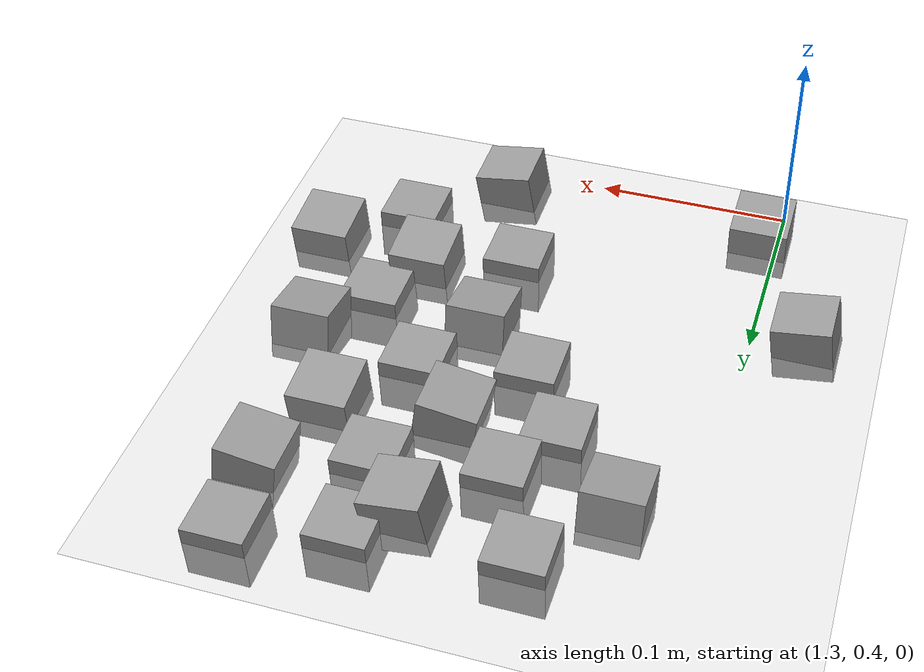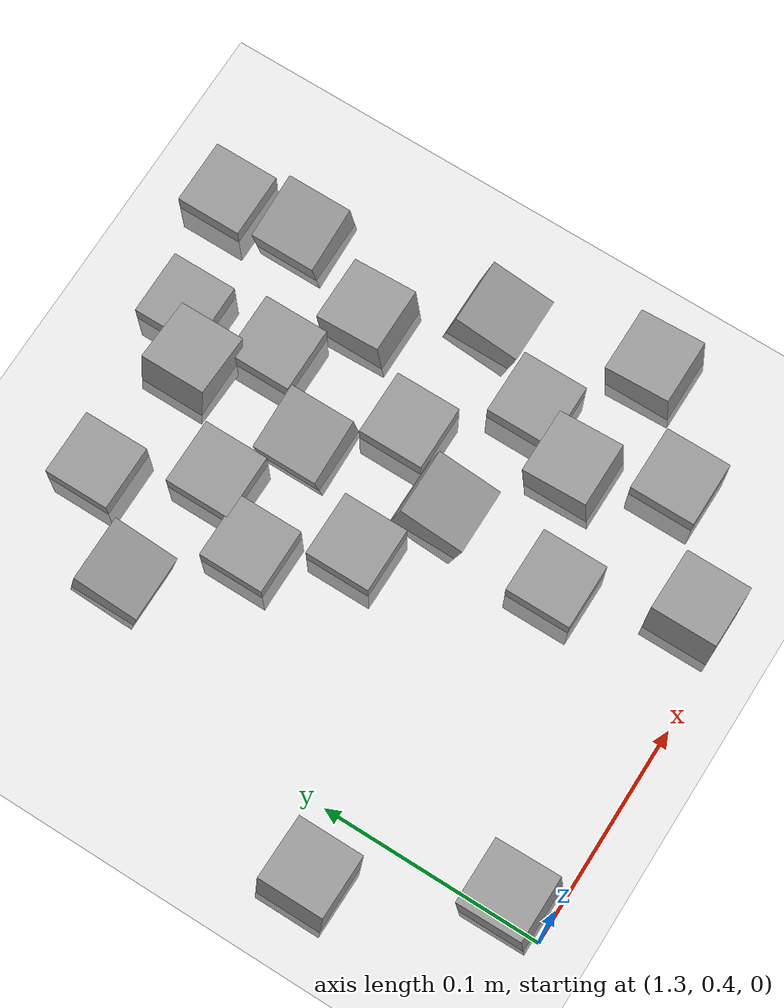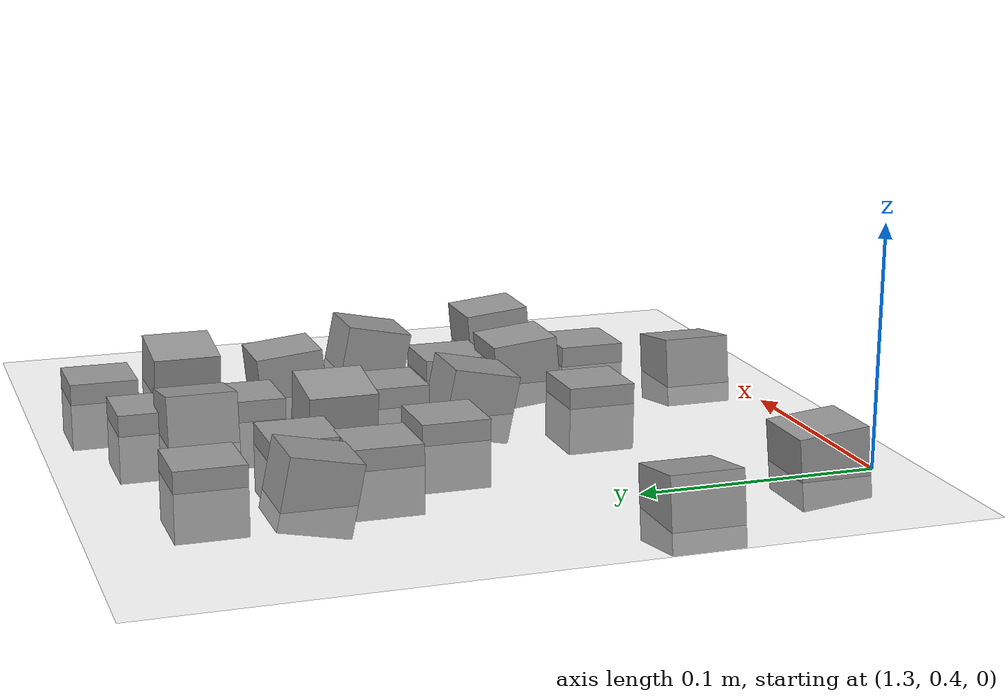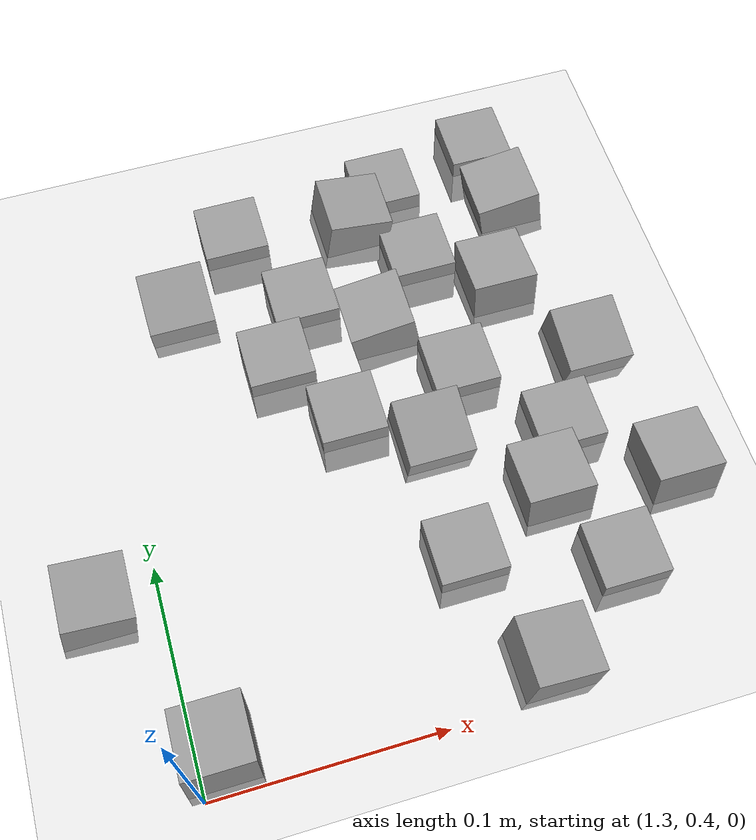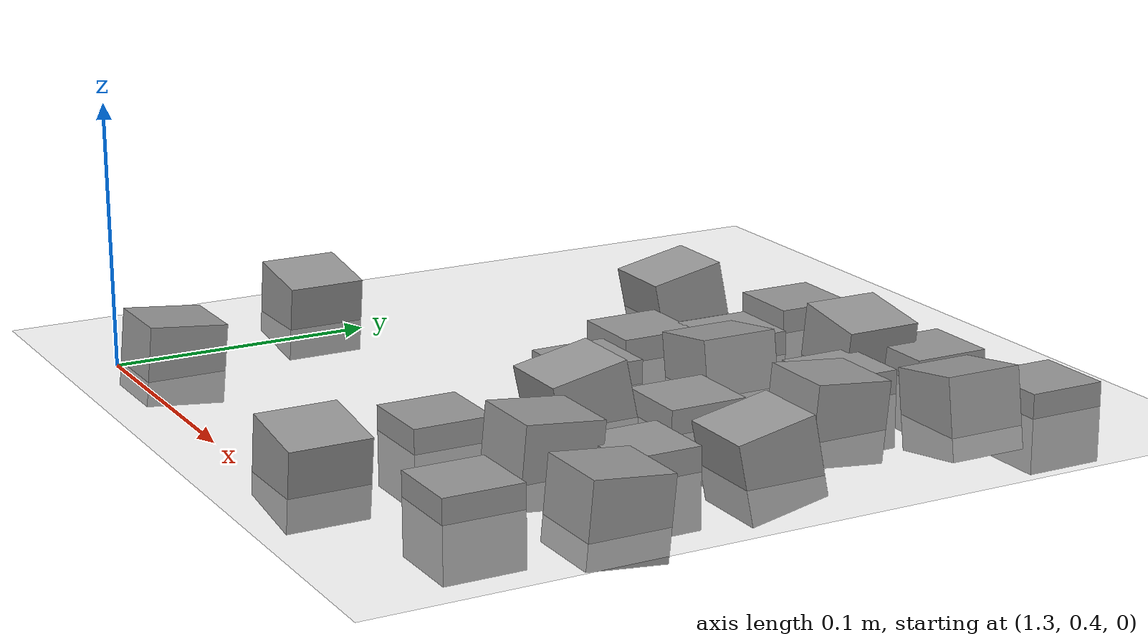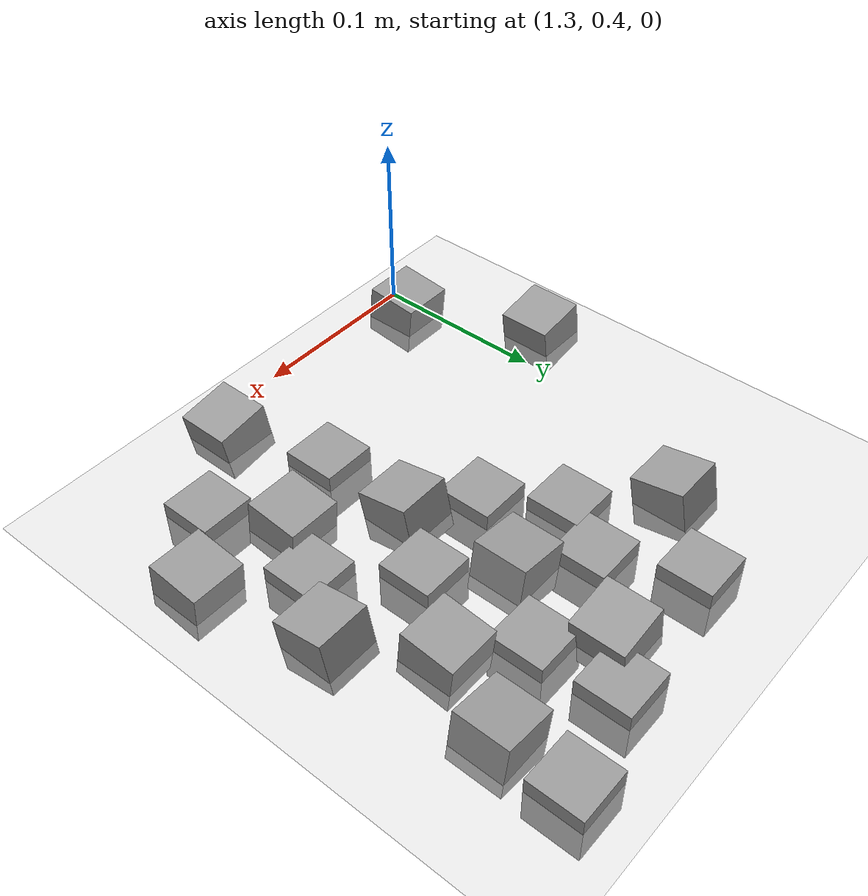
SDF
<sdf version="1.7">
 <world name="default">
  <model name="ground_plane">
   <static>1</static>
   <link name="link">
    <collision name="collision">
     <geometry><plane><normal>0 0 1</normal><size>100 100</size></plane></geometry>
     <surface><friction><ode><mu>100</mu><mu2>50</mu2></ode></friction></surface>
    </collision>
    <visual name="visual">
     <cast_shadows>0</cast_shadows>
     <geometry><plane><normal>0 0 1</normal><size>100 100</size></plane></geometry>
     <material>
      <script><uri>file://media/materials/scripts/gazebo.material</uri><name>Gazebo/Grey</name></script>
     </material>
    </visual>
   </link>
  </model>
  <model name="stone_road_0">
   <link name="link_0_clone_0">
    <inertial>
     <mass>1</mass>
     <inertia>
      <ixx>0.166667</ixx>
      <ixy>0</ixy>
      <ixz>0</ixz>
      <iyy>0.166667</iyy>
      <iyz>0</iyz>
      <izz>0.166667</izz>
     </inertia>
    </inertial>
    <pose>-0.104982 -0.15412 0.003778 0.2 -0 0</pose>
    <kinematic>1</kinematic>
    <visual name="visual">
     <geometry><box><size>0.03 0.03 0.03</size></box></geometry>
     <material>
      <lighting>1</lighting>
      <script><uri>file://media/materials/scripts/gazebo.material</uri><name>Gazebo/Grey</name></script>
      <shader type="pixel"><normal_map>__default__</normal_map></shader>
      <ambient>0.3 0.3 0.3 1</ambient>
      <diffuse>0.7 0.7 0.7 1</diffuse>
      <specular>0.01 0.01 0.01 1</specular>
      <emissive>0 0 0 1</emissive>
     </material>
    </visual>
    <collision name="collision">
     <geometry><box><size>0.03 0.03 0.03</size></box></geometry>
     <surface>
      <friction>
       <ode><mu>1</mu><mu2>1</mu2><fdir1>0 0 0</fdir1><slip1>0</slip1><slip2>0</slip2></ode>
       <torsional>
        <coefficient>1</coefficient>
        <patch_radius>0</patch_radius>
        <surface_radius>0</surface_radius>
        <use_patch_radius>1</use_patch_radius>
        <ode><slip>0</slip></ode>
       </torsional>
      </friction>
      <bounce><restitution_coefficient>0</restitution_coefficient><threshold>1e+06</threshold></bounce>
      <contact>
       <collide_without_contact>0</collide_without_contact>
       <collide_without_contact_bitmask>1</collide_without_contact_bitmask>
       <collide_bitmask>1</collide_bitmask>
       <ode>
        <soft_cfm>0</soft_cfm>
        <soft_erp>0.2</soft_erp>
        <kp>1e+13</kp>
        <kd>1</kd>
        <max_vel>0.01</max_vel>
        <min_depth>0</min_depth>
       </ode>
       <bullet>
        <split_impulse>1</split_impulse>
        <split_impulse_penetration_threshold>-0.01</split_impulse_penetration_threshold>
        <soft_cfm>0</soft_cfm>
        <soft_erp>0.2</soft_erp>
        <kp>1e+13</kp>
        <kd>1</kd>
       </bullet>
      </contact>
     </surface>
    </collision>
   </link>
   <link name="link_0_clone_1">
    <inertial>
     <mass>1</mass>
     <inertia>
      <ixx>0.166667</ixx>
      <ixy>0</ixy>
      <ixz>0</ixz>
      <iyy>0.166667</iyy>
      <iyz>0</iyz>
      <izz>0.166667</izz>
     </inertia>
    </inertial>
    <pose>-0.022921 -0.129606 0.003778 0.2 -0 0</pose>
    <kinematic>1</kinematic>
    <visual name="visual">
     <geometry><box><size>0.03 0.03 0.03</size></box></geometry>
     <material>
      <lighting>1</lighting>
      <script><uri>file://media/materials/scripts/gazebo.material</uri><name>Gazebo/Grey</name></script>
      <shader type="pixel"><normal_map>__default__</normal_map></shader>
      <ambient>0.3 0.3 0.3 1</ambient>
      <diffuse>0.7 0.7 0.7 1</diffuse>
      <specular>0.01 0.01 0.01 1</specular>
      <emissive>0 0 0 1</emissive>
     </material>
    </visual>
    <collision name="collision">
     <geometry><box><size>0.03 0.03 0.03</size></box></geometry>
     <surface>
      <friction>
       <ode><mu>1</mu><mu2>1</mu2><fdir1>0 0 0</fdir1><slip1>0</slip1><slip2>0</slip2></ode>
       <torsional>
        <coefficient>1</coefficient>
        <patch_radius>0</patch_radius>
        <surface_radius>0</surface_radius>
        <use_patch_radius>1</use_patch_radius>
        <ode><slip>0</slip></ode>
       </torsional>
      </friction>
      <bounce><restitution_coefficient>0</restitution_coefficient><threshold>1e+06</threshold></bounce>
      <contact>
       <collide_without_contact>0</collide_without_contact>
       <collide_without_contact_bitmask>1</collide_without_contact_bitmask>
       <collide_bitmask>1</collide_bitmask>
       <ode>
        <soft_cfm>0</soft_cfm>
        <soft_erp>0.2</soft_erp>
        <kp>1e+13</kp>
        <kd>1</kd>
        <max_vel>0.01</max_vel>
        <min_depth>0</min_depth>
       </ode>
       <bullet>
        <split_impulse>1</split_impulse>
        <split_impulse_penetration_threshold>-0.01</split_impulse_penetration_threshold>
        <soft_cfm>0</soft_cfm>
        <soft_erp>0.2</soft_erp>
        <kp>1e+13</kp>
        <kd>1</kd>
       </bullet>
      </contact>
     </surface>
    </collision>
   </link>
   <link name="link_0_clone_2_clone">
    <inertial>
     <mass>1</mass>
     <inertia>
      <ixx>0.166667</ixx>
      <ixy>0</ixy>
      <ixz>0</ixz>
      <iyy>0.166667</iyy>
      <iyz>0</iyz>
      <izz>0.166667</izz>
     </inertia>
    </inertial>
    <pose>-0.10771 -0.03187 0.003778 0 0.15 0</pose>
    <kinematic>1</kinematic>
    <visual name="visual">
     <geometry><box><size>0.03 0.03 0.03</size></box></geometry>
     <material>
      <lighting>1</lighting>
      <script><uri>file://media/materials/scripts/gazebo.material</uri><name>Gazebo/Grey</name></script>
      <shader type="pixel"><normal_map>__default__</normal_map></shader>
      <ambient>0.3 0.3 0.3 1</ambient>
      <diffuse>0.7 0.7 0.7 1</diffuse>
      <specular>0.01 0.01 0.01 1</specular>
      <emissive>0 0 0 1</emissive>
     </material>
    </visual>
    <collision name="collision">
     <geometry><box><size>0.03 0.03 0.03</size></box></geometry>
     <surface>
      <friction>
       <ode><mu>1</mu><mu2>1</mu2><fdir1>0 0 0</fdir1><slip1>0</slip1><slip2>0</slip2></ode>
       <torsional>
        <coefficient>1</coefficient>
        <patch_radius>0</patch_radius>
        <surface_radius>0</surface_radius>
        <use_patch_radius>1</use_patch_radius>
        <ode><slip>0</slip></ode>
       </torsional>
      </friction>
      <bounce><restitution_coefficient>0</restitution_coefficient><threshold>1e+06</threshold></bounce>
      <contact>
       <collide_without_contact>0</collide_without_contact>
       <collide_without_contact_bitmask>1</collide_without_contact_bitmask>
       <collide_bitmask>1</collide_bitmask>
       <ode>
        <soft_cfm>0</soft_cfm>
        <soft_erp>0.2</soft_erp>
        <kp>1e+13</kp>
        <kd>1</kd>
        <max_vel>0.01</max_vel>
        <min_depth>0</min_depth>
       </ode>
       <bullet>
        <split_impulse>1</split_impulse>
        <split_impulse_penetration_threshold>-0.01</split_impulse_penetration_threshold>
        <soft_cfm>0</soft_cfm>
        <soft_erp>0.2</soft_erp>
        <kp>1e+13</kp>
        <kd>1</kd>
       </bullet>
      </contact>
     </surface>
    </collision>
   </link>
   <link name="link_0_clone_2_clone_2_clone_0">
    <inertial>
     <mass>1</mass>
     <inertia>
      <ixx>0.166667</ixx>
      <ixy>0</ixy>
      <ixz>0</ixz>
      <iyy>0.166667</iyy>
      <iyz>0</iyz>
      <izz>0.166667</izz>
     </inertia>
    </inertial>
    <pose>-0.032874 -0.039714 0.003778 0 -0.15 0</pose>
    <kinematic>1</kinematic>
    <visual name="visual">
     <geometry><box><size>0.03 0.03 0.03</size></box></geometry>
     <material>
      <lighting>1</lighting>
      <script><uri>file://media/materials/scripts/gazebo.material</uri><name>Gazebo/Grey</name></script>
      <shader type="pixel"><normal_map>__default__</normal_map></shader>
      <ambient>0.3 0.3 0.3 1</ambient>
      <diffuse>0.7 0.7 0.7 1</diffuse>
      <specular>0.01 0.01 0.01 1</specular>
      <emissive>0 0 0 1</emissive>
     </material>
    </visual>
    <collision name="collision">
     <geometry><box><size>0.03 0.03 0.03</size></box></geometry>
     <surface>
      <friction>
       <ode><mu>1</mu><mu2>1</mu2><fdir1>0 0 0</fdir1><slip1>0</slip1><slip2>0</slip2></ode>
       <torsional>
        <coefficient>1</coefficient>
        <patch_radius>0</patch_radius>
        <surface_radius>0</surface_radius>
        <use_patch_radius>1</use_patch_radius>
        <ode><slip>0</slip></ode>
       </torsional>
      </friction>
      <bounce><restitution_coefficient>0</restitution_coefficient><threshold>1e+06</threshold></bounce>
      <contact>
       <collide_without_contact>0</collide_without_contact>
       <collide_without_contact_bitmask>1</collide_without_contact_bitmask>
       <collide_bitmask>1</collide_bitmask>
       <ode>
        <soft_cfm>0</soft_cfm>
        <soft_erp>0.2</soft_erp>
        <kp>1e+13</kp>
        <kd>1</kd>
        <max_vel>0.01</max_vel>
        <min_depth>0</min_depth>
       </ode>
       <bullet>
        <split_impulse>1</split_impulse>
        <split_impulse_penetration_threshold>-0.01</split_impulse_penetration_threshold>
        <soft_cfm>0</soft_cfm>
        <soft_erp>0.2</soft_erp>
        <kp>1e+13</kp>
        <kd>1</kd>
       </bullet>
      </contact>
     </surface>
    </collision>
   </link>
   <link name="link_0_clone_2_clone_2_clone_13_clone_clone_10">
    <inertial>
     <mass>1</mass>
     <inertia>
      <ixx>0.166667</ixx>
      <ixy>0</ixy>
      <ixz>0</ixz>
      <iyy>0.166667</iyy>
      <iyz>0</iyz>
      <izz>0.166667</izz>
     </inertia>
    </inertial>
    <pose>-0.006825 -0.196489 0.003778 -0.1 0 0</pose>
    <kinematic>1</kinematic>
    <visual name="visual">
     <geometry><box><size>0.03 0.03 0.03</size></box></geometry>
     <material>
      <lighting>1</lighting>
      <script><uri>file://media/materials/scripts/gazebo.material</uri><name>Gazebo/Grey</name></script>
      <shader type="pixel"><normal_map>__default__</normal_map></shader>
      <ambient>0.3 0.3 0.3 1</ambient>
      <diffuse>0.7 0.7 0.7 1</diffuse>
      <specular>0.01 0.01 0.01 1</specular>
      <emissive>0 0 0 1</emissive>
     </material>
    </visual>
    <collision name="collision">
     <geometry><box><size>0.03 0.03 0.03</size></box></geometry>
     <surface>
      <friction>
       <ode><mu>1</mu><mu2>1</mu2><fdir1>0 0 0</fdir1><slip1>0</slip1><slip2>0</slip2></ode>
       <torsional>
        <coefficient>1</coefficient>
        <patch_radius>0</patch_radius>
        <surface_radius>0</surface_radius>
        <use_patch_radius>1</use_patch_radius>
        <ode><slip>0</slip></ode>
       </torsional>
      </friction>
      <bounce><restitution_coefficient>0</restitution_coefficient><threshold>1e+06</threshold></bounce>
      <contact>
       <collide_without_contact>0</collide_without_contact>
       <collide_without_contact_bitmask>1</collide_without_contact_bitmask>
       <collide_bitmask>1</collide_bitmask>
       <ode>
        <soft_cfm>0</soft_cfm>
        <soft_erp>0.2</soft_erp>
        <kp>1e+13</kp>
        <kd>1</kd>
        <max_vel>0.01</max_vel>
        <min_depth>0</min_depth>
       </ode>
       <bullet>
        <split_impulse>1</split_impulse>
        <split_impulse_penetration_threshold>-0.01</split_impulse_penetration_threshold>
        <soft_cfm>0</soft_cfm>
        <soft_erp>0.2</soft_erp>
        <kp>1e+13</kp>
        <kd>1</kd>
       </bullet>
      </contact>
     </surface>
    </collision>
   </link>
   <link name="link_0_clone_2_clone_2_clone_13_clone_clone_16_clone_10">
    <inertial>
     <mass>1</mass>
     <inertia>
      <ixx>0.166667</ixx>
      <ixy>0</ixy>
      <ixz>0</ixz>
      <iyy>0.166667</iyy>
      <iyz>0</iyz>
      <izz>0.166667</izz>
     </inertia>
    </inertial>
    <pose>-0.082186 -0.05781 -0.006222 0 -0 0</pose>
    <kinematic>1</kinematic>
    <visual name="visual">
     <geometry><box><size>0.03 0.03 0.03</size></box></geometry>
     <material>
      <lighting>1</lighting>
      <script><uri>file://media/materials/scripts/gazebo.material</uri><name>Gazebo/Grey</name></script>
      <shader type="pixel"><normal_map>__default__</normal_map></shader>
      <ambient>0.3 0.3 0.3 1</ambient>
      <diffuse>0.7 0.7 0.7 1</diffuse>
      <specular>0.01 0.01 0.01 1</specular>
      <emissive>0 0 0 1</emissive>
     </material>
    </visual>
    <collision name="collision">
     <geometry><box><size>0.03 0.03 0.03</size></box></geometry>
     <surface>
      <friction>
       <ode><mu>1</mu><mu2>1</mu2><fdir1>0 0 0</fdir1><slip1>0</slip1><slip2>0</slip2></ode>
       <torsional>
        <coefficient>1</coefficient>
        <patch_radius>0</patch_radius>
        <surface_radius>0</surface_radius>
        <use_patch_radius>1</use_patch_radius>
        <ode><slip>0</slip></ode>
       </torsional>
      </friction>
      <bounce><restitution_coefficient>0</restitution_coefficient><threshold>1e+06</threshold></bounce>
      <contact>
       <collide_without_contact>0</collide_without_contact>
       <collide_without_contact_bitmask>1</collide_without_contact_bitmask>
       <collide_bitmask>1</collide_bitmask>
       <ode>
        <soft_cfm>0</soft_cfm>
        <soft_erp>0.2</soft_erp>
        <kp>1e+13</kp>
        <kd>1</kd>
        <max_vel>0.01</max_vel>
        <min_depth>0</min_depth>
       </ode>
       <bullet>
        <split_impulse>1</split_impulse>
        <split_impulse_penetration_threshold>-0.01</split_impulse_penetration_threshold>
        <soft_cfm>0</soft_cfm>
        <soft_erp>0.2</soft_erp>
        <kp>1e+13</kp>
        <kd>1</kd>
       </bullet>
      </contact>
     </surface>
    </collision>
   </link>
   <link name="link_0_clone_2_clone_2_clone_13_clone_clone_16_clone_11">
    <inertial>
     <mass>1</mass>
     <inertia>
      <ixx>0.166667</ixx>
      <ixy>0</ixy>
      <ixz>0</ixz>
      <iyy>0.166667</iyy>
      <iyz>0</iyz>
      <izz>0.166667</izz>
     </inertia>
    </inertial>
    <pose>-0.141844 -0.066911 -0.006222 0 -0 0</pose>
    <kinematic>1</kinematic>
    <visual name="visual">
     <geometry><box><size>0.03 0.03 0.03</size></box></geometry>
     <material>
      <lighting>1</lighting>
      <script><uri>file://media/materials/scripts/gazebo.material</uri><name>Gazebo/Grey</name></script>
      <shader type="pixel"><normal_map>__default__</normal_map></shader>
      <ambient>0.3 0.3 0.3 1</ambient>
      <diffuse>0.7 0.7 0.7 1</diffuse>
      <specular>0.01 0.01 0.01 1</specular>
      <emissive>0 0 0 1</emissive>
     </material>
    </visual>
    <collision name="collision">
     <geometry><box><size>0.03 0.03 0.03</size></box></geometry>
     <surface>
      <friction>
       <ode><mu>1</mu><mu2>1</mu2><fdir1>0 0 0</fdir1><slip1>0</slip1><slip2>0</slip2></ode>
       <torsional>
        <coefficient>1</coefficient>
        <patch_radius>0</patch_radius>
        <surface_radius>0</surface_radius>
        <use_patch_radius>1</use_patch_radius>
        <ode><slip>0</slip></ode>
       </torsional>
      </friction>
      <bounce><restitution_coefficient>0</restitution_coefficient><threshold>1e+06</threshold></bounce>
      <contact>
       <collide_without_contact>0</collide_without_contact>
       <collide_without_contact_bitmask>1</collide_without_contact_bitmask>
       <collide_bitmask>1</collide_bitmask>
       <ode>
        <soft_cfm>0</soft_cfm>
        <soft_erp>0.2</soft_erp>
        <kp>1e+13</kp>
        <kd>1</kd>
        <max_vel>0.01</max_vel>
        <min_depth>0</min_depth>
       </ode>
       <bullet>
        <split_impulse>1</split_impulse>
        <split_impulse_penetration_threshold>-0.01</split_impulse_penetration_threshold>
        <soft_cfm>0</soft_cfm>
        <soft_erp>0.2</soft_erp>
        <kp>1e+13</kp>
        <kd>1</kd>
       </bullet>
      </contact>
     </surface>
    </collision>
   </link>
   <link name="link_0_clone_2_clone_2_clone_13_clone_clone_16_clone_12">
    <inertial>
     <mass>1</mass>
     <inertia>
      <ixx>0.166667</ixx>
      <ixy>0</ixy>
      <ixz>0</ixz>
      <iyy>0.166667</iyy>
      <iyz>0</iyz>
      <izz>0.166667</izz>
     </inertia>
    </inertial>
    <pose>-0.164908 -0.022947 -0.006222 0 -0 0</pose>
    <kinematic>1</kinematic>
    <visual name="visual">
     <geometry><box><size>0.03 0.03 0.03</size></box></geometry>
     <material>
      <lighting>1</lighting>
      <script><uri>file://media/materials/scripts/gazebo.material</uri><name>Gazebo/Grey</name></script>
      <shader type="pixel"><normal_map>__default__</normal_map></shader>
      <ambient>0.3 0.3 0.3 1</ambient>
      <diffuse>0.7 0.7 0.7 1</diffuse>
      <specular>0.01 0.01 0.01 1</specular>
      <emissive>0 0 0 1</emissive>
     </material>
    </visual>
    <collision name="collision">
     <geometry><box><size>0.03 0.03 0.03</size></box></geometry>
     <surface>
      <friction>
       <ode><mu>1</mu><mu2>1</mu2><fdir1>0 0 0</fdir1><slip1>0</slip1><slip2>0</slip2></ode>
       <torsional>
        <coefficient>1</coefficient>
        <patch_radius>0</patch_radius>
        <surface_radius>0</surface_radius>
        <use_patch_radius>1</use_patch_radius>
        <ode><slip>0</slip></ode>
       </torsional>
      </friction>
      <bounce><restitution_coefficient>0</restitution_coefficient><threshold>1e+06</threshold></bounce>
      <contact>
       <collide_without_contact>0</collide_without_contact>
       <collide_without_contact_bitmask>1</collide_without_contact_bitmask>
       <collide_bitmask>1</collide_bitmask>
       <ode>
        <soft_cfm>0</soft_cfm>
        <soft_erp>0.2</soft_erp>
        <kp>1e+13</kp>
        <kd>1</kd>
        <max_vel>0.01</max_vel>
        <min_depth>0</min_depth>
       </ode>
       <bullet>
        <split_impulse>1</split_impulse>
        <split_impulse_penetration_threshold>-0.01</split_impulse_penetration_threshold>
        <soft_cfm>0</soft_cfm>
        <soft_erp>0.2</soft_erp>
        <kp>1e+13</kp>
        <kd>1</kd>
       </bullet>
      </contact>
     </surface>
    </collision>
   </link>
   <link name="link_0_clone_2_clone_2_clone_13_clone_clone_16_clone_26">
    <inertial>
     <mass>1</mass>
     <inertia>
      <ixx>0.166667</ixx>
      <ixy>0</ixy>
      <ixz>0</ixz>
      <iyy>0.166667</iyy>
      <iyz>0</iyz>
      <izz>0.166667</izz>
     </inertia>
    </inertial>
    <pose>-0.035162 -0.002247 -0.006222 0 -0 0</pose>
    <kinematic>1</kinematic>
    <visual name="visual">
     <geometry><box><size>0.03 0.03 0.03</size></box></geometry>
     <material>
      <lighting>1</lighting>
      <script><uri>file://media/materials/scripts/gazebo.material</uri><name>Gazebo/Grey</name></script>
      <shader type="pixel"><normal_map>__default__</normal_map></shader>
      <ambient>0.3 0.3 0.3 1</ambient>
      <diffuse>0.7 0.7 0.7 1</diffuse>
      <specular>0.01 0.01 0.01 1</specular>
      <emissive>0 0 0 1</emissive>
     </material>
    </visual>
    <collision name="collision">
     <geometry><box><size>0.03 0.03 0.03</size></box></geometry>
     <surface>
      <friction>
       <ode><mu>1</mu><mu2>1</mu2><fdir1>0 0 0</fdir1><slip1>0</slip1><slip2>0</slip2></ode>
       <torsional>
        <coefficient>1</coefficient>
        <patch_radius>0</patch_radius>
        <surface_radius>0</surface_radius>
        <use_patch_radius>1</use_patch_radius>
        <ode><slip>0</slip></ode>
       </torsional>
      </friction>
      <bounce><restitution_coefficient>0</restitution_coefficient><threshold>1e+06</threshold></bounce>
      <contact>
       <collide_without_contact>0</collide_without_contact>
       <collide_without_contact_bitmask>1</collide_without_contact_bitmask>
       <collide_bitmask>1</collide_bitmask>
       <ode>
        <soft_cfm>0</soft_cfm>
        <soft_erp>0.2</soft_erp>
        <kp>1e+13</kp>
        <kd>1</kd>
        <max_vel>0.01</max_vel>
        <min_depth>0</min_depth>
       </ode>
       <bullet>
        <split_impulse>1</split_impulse>
        <split_impulse_penetration_threshold>-0.01</split_impulse_penetration_threshold>
        <soft_cfm>0</soft_cfm>
        <soft_erp>0.2</soft_erp>
        <kp>1e+13</kp>
        <kd>1</kd>
       </bullet>
      </contact>
     </surface>
    </collision>
   </link>
   <link name="link_0_clone_2_clone_2_clone_13_clone_clone_16_clone_27">
    <inertial>
     <mass>1</mass>
     <inertia>
      <ixx>0.166667</ixx>
      <ixy>0</ixy>
      <ixz>0</ixz>
      <iyy>0.166667</iyy>
      <iyz>0</iyz>
      <izz>0.166667</izz>
     </inertia>
    </inertial>
    <pose>-0.137316 -0.132225 -0.006222 0 -0 0</pose>
    <kinematic>1</kinematic>
    <visual name="visual">
     <geometry><box><size>0.03 0.03 0.03</size></box></geometry>
     <material>
      <lighting>1</lighting>
      <script><uri>file://media/materials/scripts/gazebo.material</uri><name>Gazebo/Grey</name></script>
      <shader type="pixel"><normal_map>__default__</normal_map></shader>
      <ambient>0.3 0.3 0.3 1</ambient>
      <diffuse>0.7 0.7 0.7 1</diffuse>
      <specular>0.01 0.01 0.01 1</specular>
      <emissive>0 0 0 1</emissive>
     </material>
    </visual>
    <collision name="collision">
     <geometry><box><size>0.03 0.03 0.03</size></box></geometry>
     <surface>
      <friction>
       <ode><mu>1</mu><mu2>1</mu2><fdir1>0 0 0</fdir1><slip1>0</slip1><slip2>0</slip2></ode>
       <torsional>
        <coefficient>1</coefficient>
        <patch_radius>0</patch_radius>
        <surface_radius>0</surface_radius>
        <use_patch_radius>1</use_patch_radius>
        <ode><slip>0</slip></ode>
       </torsional>
      </friction>
      <bounce><restitution_coefficient>0</restitution_coefficient><threshold>1e+06</threshold></bounce>
      <contact>
       <collide_without_contact>0</collide_without_contact>
       <collide_without_contact_bitmask>1</collide_without_contact_bitmask>
       <collide_bitmask>1</collide_bitmask>
       <ode>
        <soft_cfm>0</soft_cfm>
        <soft_erp>0.2</soft_erp>
        <kp>1e+13</kp>
        <kd>1</kd>
        <max_vel>0.01</max_vel>
        <min_depth>0</min_depth>
       </ode>
       <bullet>
        <split_impulse>1</split_impulse>
        <split_impulse_penetration_threshold>-0.01</split_impulse_penetration_threshold>
        <soft_cfm>0</soft_cfm>
        <soft_erp>0.2</soft_erp>
        <kp>1e+13</kp>
        <kd>1</kd>
       </bullet>
      </contact>
     </surface>
    </collision>
   </link>
   <link name="link_0_clone_2_clone_2_clone_13_clone_clone_16_clone_28">
    <inertial>
     <mass>1</mass>
     <inertia>
      <ixx>0.166667</ixx>
      <ixy>0</ixy>
      <ixz>0</ixz>
      <iyy>0.166667</iyy>
      <iyz>0</iyz>
      <izz>0.166667</izz>
     </inertia>
    </inertial>
    <pose>-0.10708 -0.209042 -0.006222 0 -0 0</pose>
    <kinematic>1</kinematic>
    <visual name="visual">
     <geometry><box><size>0.03 0.03 0.03</size></box></geometry>
     <material>
      <lighting>1</lighting>
      <script><uri>file://media/materials/scripts/gazebo.material</uri><name>Gazebo/Grey</name></script>
      <shader type="pixel"><normal_map>__default__</normal_map></shader>
      <ambient>0.3 0.3 0.3 1</ambient>
      <diffuse>0.7 0.7 0.7 1</diffuse>
      <specular>0.01 0.01 0.01 1</specular>
      <emissive>0 0 0 1</emissive>
     </material>
    </visual>
    <collision name="collision">
     <geometry><box><size>0.03 0.03 0.03</size></box></geometry>
     <surface>
      <friction>
       <ode><mu>1</mu><mu2>1</mu2><fdir1>0 0 0</fdir1><slip1>0</slip1><slip2>0</slip2></ode>
       <torsional>
        <coefficient>1</coefficient>
        <patch_radius>0</patch_radius>
        <surface_radius>0</surface_radius>
        <use_patch_radius>1</use_patch_radius>
        <ode><slip>0</slip></ode>
       </torsional>
      </friction>
      <bounce><restitution_coefficient>0</restitution_coefficient><threshold>1e+06</threshold></bounce>
      <contact>
       <collide_without_contact>0</collide_without_contact>
       <collide_without_contact_bitmask>1</collide_without_contact_bitmask>
       <collide_bitmask>1</collide_bitmask>
       <ode>
        <soft_cfm>0</soft_cfm>
        <soft_erp>0.2</soft_erp>
        <kp>1e+13</kp>
        <kd>1</kd>
        <max_vel>0.01</max_vel>
        <min_depth>0</min_depth>
       </ode>
       <bullet>
        <split_impulse>1</split_impulse>
        <split_impulse_penetration_threshold>-0.01</split_impulse_penetration_threshold>
        <soft_cfm>0</soft_cfm>
        <soft_erp>0.2</soft_erp>
        <kp>1e+13</kp>
        <kd>1</kd>
       </bullet>
      </contact>
     </surface>
    </collision>
   </link>
   <link name="link_0_clone_2_clone_2_clone_13_clone_clone_16_clone_29">
    <inertial>
     <mass>1</mass>
     <inertia>
      <ixx>0.166667</ixx>
      <ixy>0</ixy>
      <ixz>0</ixz>
      <iyy>0.166667</iyy>
      <iyz>0</iyz>
      <izz>0.166667</izz>
     </inertia>
    </inertial>
    <pose>-0.042964 -0.229632 -0.006222 0 -0 0</pose>
    <kinematic>1</kinematic>
    <visual name="visual">
     <geometry><box><size>0.03 0.03 0.03</size></box></geometry>
     <material>
      <lighting>1</lighting>
      <script><uri>file://media/materials/scripts/gazebo.material</uri><name>Gazebo/Grey</name></script>
      <shader type="pixel"><normal_map>__default__</normal_map></shader>
      <ambient>0.3 0.3 0.3 1</ambient>
      <diffuse>0.7 0.7 0.7 1</diffuse>
      <specular>0.01 0.01 0.01 1</specular>
      <emissive>0 0 0 1</emissive>
     </material>
    </visual>
    <collision name="collision">
     <geometry><box><size>0.03 0.03 0.03</size></box></geometry>
     <surface>
      <friction>
       <ode><mu>1</mu><mu2>1</mu2><fdir1>0 0 0</fdir1><slip1>0</slip1><slip2>0</slip2></ode>
       <torsional>
        <coefficient>1</coefficient>
        <patch_radius>0</patch_radius>
        <surface_radius>0</surface_radius>
        <use_patch_radius>1</use_patch_radius>
        <ode><slip>0</slip></ode>
       </torsional>
      </friction>
      <bounce><restitution_coefficient>0</restitution_coefficient><threshold>1e+06</threshold></bounce>
      <contact>
       <collide_without_contact>0</collide_without_contact>
       <collide_without_contact_bitmask>1</collide_without_contact_bitmask>
       <collide_bitmask>1</collide_bitmask>
       <ode>
        <soft_cfm>0</soft_cfm>
        <soft_erp>0.2</soft_erp>
        <kp>1e+13</kp>
        <kd>1</kd>
        <max_vel>0.01</max_vel>
        <min_depth>0</min_depth>
       </ode>
       <bullet>
        <split_impulse>1</split_impulse>
        <split_impulse_penetration_threshold>-0.01</split_impulse_penetration_threshold>
        <soft_cfm>0</soft_cfm>
        <soft_erp>0.2</soft_erp>
        <kp>1e+13</kp>
        <kd>1</kd>
       </bullet>
      </contact>
     </surface>
    </collision>
   </link>
   <link name="link_0_clone_2_clone_2_clone_13_clone_clone_16_clone_30">
    <inertial>
     <mass>1</mass>
     <inertia>
      <ixx>0.166667</ixx>
      <ixy>0</ixy>
      <ixz>0</ixz>
      <iyy>0.166667</iyy>
      <iyz>0</iyz>
      <izz>0.166667</izz>
     </inertia>
    </inertial>
    <pose>-0.160879 -0.095951 -0.006222 0 -0 0</pose>
    <kinematic>1</kinematic>
    <visual name="visual">
     <geometry><box><size>0.03 0.03 0.03</size></box></geometry>
     <material>
      <lighting>1</lighting>
      <script><uri>file://media/materials/scripts/gazebo.material</uri><name>Gazebo/Grey</name></script>
      <shader type="pixel"><normal_map>__default__</normal_map></shader>
      <ambient>0.3 0.3 0.3 1</ambient>
      <diffuse>0.7 0.7 0.7 1</diffuse>
      <specular>0.01 0.01 0.01 1</specular>
      <emissive>0 0 0 1</emissive>
     </material>
    </visual>
    <collision name="collision">
     <geometry><box><size>0.03 0.03 0.03</size></box></geometry>
     <surface>
      <friction>
       <ode><mu>1</mu><mu2>1</mu2><fdir1>0 0 0</fdir1><slip1>0</slip1><slip2>0</slip2></ode>
       <torsional>
        <coefficient>1</coefficient>
        <patch_radius>0</patch_radius>
        <surface_radius>0</surface_radius>
        <use_patch_radius>1</use_patch_radius>
        <ode><slip>0</slip></ode>
       </torsional>
      </friction>
      <bounce><restitution_coefficient>0</restitution_coefficient><threshold>1e+06</threshold></bounce>
      <contact>
       <collide_without_contact>0</collide_without_contact>
       <collide_without_contact_bitmask>1</collide_without_contact_bitmask>
       <collide_bitmask>1</collide_bitmask>
       <ode>
        <soft_cfm>0</soft_cfm>
        <soft_erp>0.2</soft_erp>
        <kp>1e+13</kp>
        <kd>1</kd>
        <max_vel>0.01</max_vel>
        <min_depth>0</min_depth>
       </ode>
       <bullet>
        <split_impulse>1</split_impulse>
        <split_impulse_penetration_threshold>-0.01</split_impulse_penetration_threshold>
        <soft_cfm>0</soft_cfm>
        <soft_erp>0.2</soft_erp>
        <kp>1e+13</kp>
        <kd>1</kd>
       </bullet>
      </contact>
     </surface>
    </collision>
   </link>
   <link name="link_0_clone_2_clone_2_clone_13_clone_clone_16_clone_5">
    <inertial>
     <mass>1</mass>
     <inertia>
      <ixx>0.166667</ixx>
      <ixy>0</ixy>
      <ixz>0</ixz>
      <iyy>0.166667</iyy>
      <iyz>0</iyz>
      <izz>0.166667</izz>
     </inertia>
    </inertial>
    <pose>-0.086674 -0.014784 -0.006222 0 -0 0</pose>
    <kinematic>1</kinematic>
    <visual name="visual">
     <geometry><box><size>0.03 0.03 0.03</size></box></geometry>
     <material>
      <lighting>1</lighting>
      <script><uri>file://media/materials/scripts/gazebo.material</uri><name>Gazebo/Grey</name></script>
      <shader type="pixel"><normal_map>__default__</normal_map></shader>
      <ambient>0.3 0.3 0.3 1</ambient>
      <diffuse>0.7 0.7 0.7 1</diffuse>
      <specular>0.01 0.01 0.01 1</specular>
      <emissive>0 0 0 1</emissive>
     </material>
    </visual>
    <collision name="collision">
     <geometry><box><size>0.03 0.03 0.03</size></box></geometry>
     <surface>
      <friction>
       <ode><mu>1</mu><mu2>1</mu2><fdir1>0 0 0</fdir1><slip1>0</slip1><slip2>0</slip2></ode>
       <torsional>
        <coefficient>1</coefficient>
        <patch_radius>0</patch_radius>
        <surface_radius>0</surface_radius>
        <use_patch_radius>1</use_patch_radius>
        <ode><slip>0</slip></ode>
       </torsional>
      </friction>
      <bounce><restitution_coefficient>0</restitution_coefficient><threshold>1e+06</threshold></bounce>
      <contact>
       <collide_without_contact>0</collide_without_contact>
       <collide_without_contact_bitmask>1</collide_without_contact_bitmask>
       <collide_bitmask>1</collide_bitmask>
       <ode>
        <soft_cfm>0</soft_cfm>
        <soft_erp>0.2</soft_erp>
        <kp>1e+13</kp>
        <kd>1</kd>
        <max_vel>0.01</max_vel>
        <min_depth>0</min_depth>
       </ode>
       <bullet>
        <split_impulse>1</split_impulse>
        <split_impulse_penetration_threshold>-0.01</split_impulse_penetration_threshold>
        <soft_cfm>0</soft_cfm>
        <soft_erp>0.2</soft_erp>
        <kp>1e+13</kp>
        <kd>1</kd>
       </bullet>
      </contact>
     </surface>
    </collision>
   </link>
   <link name="link_0_clone_2_clone_2_clone_13_clone_clone_16_clone_8">
    <inertial>
     <mass>1</mass>
     <inertia>
      <ixx>0.166667</ixx>
      <ixy>0</ixy>
      <ixz>0</ixz>
      <iyy>0.166667</iyy>
      <iyz>0</iyz>
      <izz>0.166667</izz>
     </inertia>
    </inertial>
    <pose>-0.045715 -0.162471 -0.006222 0 -0 0</pose>
    <kinematic>1</kinematic>
    <visual name="visual">
     <geometry><box><size>0.03 0.03 0.03</size></box></geometry>
     <material>
      <lighting>1</lighting>
      <script><uri>file://media/materials/scripts/gazebo.material</uri><name>Gazebo/Grey</name></script>
      <shader type="pixel"><normal_map>__default__</normal_map></shader>
      <ambient>0.3 0.3 0.3 1</ambient>
      <diffuse>0.7 0.7 0.7 1</diffuse>
      <specular>0.01 0.01 0.01 1</specular>
      <emissive>0 0 0 1</emissive>
     </material>
    </visual>
    <collision name="collision">
     <geometry><box><size>0.03 0.03 0.03</size></box></geometry>
     <surface>
      <friction>
       <ode><mu>1</mu><mu2>1</mu2><fdir1>0 0 0</fdir1><slip1>0</slip1><slip2>0</slip2></ode>
       <torsional>
        <coefficient>1</coefficient>
        <patch_radius>0</patch_radius>
        <surface_radius>0</surface_radius>
        <use_patch_radius>1</use_patch_radius>
        <ode><slip>0</slip></ode>
       </torsional>
      </friction>
      <bounce><restitution_coefficient>0</restitution_coefficient><threshold>1e+06</threshold></bounce>
      <contact>
       <collide_without_contact>0</collide_without_contact>
       <collide_without_contact_bitmask>1</collide_without_contact_bitmask>
       <collide_bitmask>1</collide_bitmask>
       <ode>
        <soft_cfm>0</soft_cfm>
        <soft_erp>0.2</soft_erp>
        <kp>1e+13</kp>
        <kd>1</kd>
        <max_vel>0.01</max_vel>
        <min_depth>0</min_depth>
       </ode>
       <bullet>
        <split_impulse>1</split_impulse>
        <split_impulse_penetration_threshold>-0.01</split_impulse_penetration_threshold>
        <soft_cfm>0</soft_cfm>
        <soft_erp>0.2</soft_erp>
        <kp>1e+13</kp>
        <kd>1</kd>
       </bullet>
      </contact>
     </surface>
    </collision>
   </link>
   <link name="link_0_clone_2_clone_2_clone_13_clone_clone_16_clone_9">
    <inertial>
     <mass>1</mass>
     <inertia>
      <ixx>0.166667</ixx>
      <ixy>0</ixy>
      <ixz>0</ixz>
      <iyy>0.166667</iyy>
      <iyz>0</iyz>
      <izz>0.166667</izz>
     </inertia>
    </inertial>
    <pose>-0.081689 -0.122641 -0.006222 0 -0 0</pose>
    <kinematic>1</kinematic>
    <visual name="visual">
     <geometry><box><size>0.03 0.03 0.03</size></box></geometry>
     <material>
      <lighting>1</lighting>
      <script><uri>file://media/materials/scripts/gazebo.material</uri><name>Gazebo/Grey</name></script>
      <shader type="pixel"><normal_map>__default__</normal_map></shader>
      <ambient>0.3 0.3 0.3 1</ambient>
      <diffuse>0.7 0.7 0.7 1</diffuse>
      <specular>0.01 0.01 0.01 1</specular>
      <emissive>0 0 0 1</emissive>
     </material>
    </visual>
    <collision name="collision">
     <geometry><box><size>0.03 0.03 0.03</size></box></geometry>
     <surface>
      <friction>
       <ode><mu>1</mu><mu2>1</mu2><fdir1>0 0 0</fdir1><slip1>0</slip1><slip2>0</slip2></ode>
       <torsional>
        <coefficient>1</coefficient>
        <patch_radius>0</patch_radius>
        <surface_radius>0</surface_radius>
        <use_patch_radius>1</use_patch_radius>
        <ode><slip>0</slip></ode>
       </torsional>
      </friction>
      <bounce><restitution_coefficient>0</restitution_coefficient><threshold>1e+06</threshold></bounce>
      <contact>
       <collide_without_contact>0</collide_without_contact>
       <collide_without_contact_bitmask>1</collide_without_contact_bitmask>
       <collide_bitmask>1</collide_bitmask>
       <ode>
        <soft_cfm>0</soft_cfm>
        <soft_erp>0.2</soft_erp>
        <kp>1e+13</kp>
        <kd>1</kd>
        <max_vel>0.01</max_vel>
        <min_depth>0</min_depth>
       </ode>
       <bullet>
        <split_impulse>1</split_impulse>
        <split_impulse_penetration_threshold>-0.01</split_impulse_penetration_threshold>
        <soft_cfm>0</soft_cfm>
        <soft_erp>0.2</soft_erp>
        <kp>1e+13</kp>
        <kd>1</kd>
       </bullet>
      </contact>
     </surface>
    </collision>
   </link>
   <link name="link_0_clone_2_clone_2_clone_13_clone_clone_8">
    <inertial>
     <mass>1</mass>
     <inertia>
      <ixx>0.166667</ixx>
      <ixy>0</ixy>
      <ixz>0</ixz>
      <iyy>0.166667</iyy>
      <iyz>0</iyz>
      <izz>0.166667</izz>
     </inertia>
    </inertial>
    <pose>-0.051207 -0.083778 0.003778 -0.1 0 0</pose>
    <kinematic>1</kinematic>
    <visual name="visual">
     <geometry><box><size>0.03 0.03 0.03</size></box></geometry>
     <material>
      <lighting>1</lighting>
      <script><uri>file://media/materials/scripts/gazebo.material</uri><name>Gazebo/Grey</name></script>
      <shader type="pixel"><normal_map>__default__</normal_map></shader>
      <ambient>0.3 0.3 0.3 1</ambient>
      <diffuse>0.7 0.7 0.7 1</diffuse>
      <specular>0.01 0.01 0.01 1</specular>
      <emissive>0 0 0 1</emissive>
     </material>
    </visual>
    <collision name="collision">
     <geometry><box><size>0.03 0.03 0.03</size></box></geometry>
     <surface>
      <friction>
       <ode><mu>1</mu><mu2>1</mu2><fdir1>0 0 0</fdir1><slip1>0</slip1><slip2>0</slip2></ode>
       <torsional>
        <coefficient>1</coefficient>
        <patch_radius>0</patch_radius>
        <surface_radius>0</surface_radius>
        <use_patch_radius>1</use_patch_radius>
        <ode><slip>0</slip></ode>
       </torsional>
      </friction>
      <bounce><restitution_coefficient>0</restitution_coefficient><threshold>1e+06</threshold></bounce>
      <contact>
       <collide_without_contact>0</collide_without_contact>
       <collide_without_contact_bitmask>1</collide_without_contact_bitmask>
       <collide_bitmask>1</collide_bitmask>
       <ode>
        <soft_cfm>0</soft_cfm>
        <soft_erp>0.2</soft_erp>
        <kp>1e+13</kp>
        <kd>1</kd>
        <max_vel>0.01</max_vel>
        <min_depth>0</min_depth>
       </ode>
       <bullet>
        <split_impulse>1</split_impulse>
        <split_impulse_penetration_threshold>-0.01</split_impulse_penetration_threshold>
        <soft_cfm>0</soft_cfm>
        <soft_erp>0.2</soft_erp>
        <kp>1e+13</kp>
        <kd>1</kd>
       </bullet>
      </contact>
     </surface>
    </collision>
   </link>
   <link name="link_0_clone_2_clone_2_clone_13_clone_clone_9">
    <inertial>
     <mass>1</mass>
     <inertia>
      <ixx>0.166667</ixx>
      <ixy>0</ixy>
      <ixz>0</ixz>
      <iyy>0.166667</iyy>
      <iyz>0</iyz>
      <izz>0.166667</izz>
     </inertia>
    </inertial>
    <pose>-0.062692 -0.190617 0.003778 -0.1 0 0</pose>
    <kinematic>1</kinematic>
    <visual name="visual">
     <geometry><box><size>0.03 0.03 0.03</size></box></geometry>
     <material>
      <lighting>1</lighting>
      <script><uri>file://media/materials/scripts/gazebo.material</uri><name>Gazebo/Grey</name></script>
      <shader type="pixel"><normal_map>__default__</normal_map></shader>
      <ambient>0.3 0.3 0.3 1</ambient>
      <diffuse>0.7 0.7 0.7 1</diffuse>
      <specular>0.01 0.01 0.01 1</specular>
      <emissive>0 0 0 1</emissive>
     </material>
    </visual>
    <collision name="collision">
     <geometry><box><size>0.03 0.03 0.03</size></box></geometry>
     <surface>
      <friction>
       <ode><mu>1</mu><mu2>1</mu2><fdir1>0 0 0</fdir1><slip1>0</slip1><slip2>0</slip2></ode>
       <torsional>
        <coefficient>1</coefficient>
        <patch_radius>0</patch_radius>
        <surface_radius>0</surface_radius>
        <use_patch_radius>1</use_patch_radius>
        <ode><slip>0</slip></ode>
       </torsional>
      </friction>
      <bounce><restitution_coefficient>0</restitution_coefficient><threshold>1e+06</threshold></bounce>
      <contact>
       <collide_without_contact>0</collide_without_contact>
       <collide_without_contact_bitmask>1</collide_without_contact_bitmask>
       <collide_bitmask>1</collide_bitmask>
       <ode>
        <soft_cfm>0</soft_cfm>
        <soft_erp>0.2</soft_erp>
        <kp>1e+13</kp>
        <kd>1</kd>
        <max_vel>0.01</max_vel>
        <min_depth>0</min_depth>
       </ode>
       <bullet>
        <split_impulse>1</split_impulse>
        <split_impulse_penetration_threshold>-0.01</split_impulse_penetration_threshold>
        <soft_cfm>0</soft_cfm>
        <soft_erp>0.2</soft_erp>
        <kp>1e+13</kp>
        <kd>1</kd>
       </bullet>
      </contact>
     </surface>
    </collision>
   </link>
   <link name="link_0_clone_2_clone_2_clone_3">
    <inertial>
     <mass>1</mass>
     <inertia>
      <ixx>0.166667</ixx>
      <ixy>0</ixy>
      <ixz>0</ixz>
      <iyy>0.166667</iyy>
      <iyz>0</iyz>
      <izz>0.166667</izz>
     </inertia>
    </inertial>
    <pose>-0.110514 -0.090915 0.003778 0 -0.15 0</pose>
    <kinematic>1</kinematic>
    <visual name="visual">
     <geometry><box><size>0.03 0.03 0.03</size></box></geometry>
     <material>
      <lighting>1</lighting>
      <script><uri>file://media/materials/scripts/gazebo.material</uri><name>Gazebo/Grey</name></script>
      <shader type="pixel"><normal_map>__default__</normal_map></shader>
      <ambient>0.3 0.3 0.3 1</ambient>
      <diffuse>0.7 0.7 0.7 1</diffuse>
      <specular>0.01 0.01 0.01 1</specular>
      <emissive>0 0 0 1</emissive>
     </material>
    </visual>
    <collision name="collision">
     <geometry><box><size>0.03 0.03 0.03</size></box></geometry>
     <surface>
      <friction>
       <ode><mu>1</mu><mu2>1</mu2><fdir1>0 0 0</fdir1><slip1>0</slip1><slip2>0</slip2></ode>
       <torsional>
        <coefficient>1</coefficient>
        <patch_radius>0</patch_radius>
        <surface_radius>0</surface_radius>
        <use_patch_radius>1</use_patch_radius>
        <ode><slip>0</slip></ode>
       </torsional>
      </friction>
      <bounce><restitution_coefficient>0</restitution_coefficient><threshold>1e+06</threshold></bounce>
      <contact>
       <collide_without_contact>0</collide_without_contact>
       <collide_without_contact_bitmask>1</collide_without_contact_bitmask>
       <collide_bitmask>1</collide_bitmask>
       <ode>
        <soft_cfm>0</soft_cfm>
        <soft_erp>0.2</soft_erp>
        <kp>1e+13</kp>
        <kd>1</kd>
        <max_vel>0.01</max_vel>
        <min_depth>0</min_depth>
       </ode>
       <bullet>
        <split_impulse>1</split_impulse>
        <split_impulse_penetration_threshold>-0.01</split_impulse_penetration_threshold>
        <soft_cfm>0</soft_cfm>
        <soft_erp>0.2</soft_erp>
        <kp>1e+13</kp>
        <kd>1</kd>
       </bullet>
      </contact>
     </surface>
    </collision>
   </link>
   <link name="link_0_clone_2_clone_6">
    <inertial>
     <mass>1</mass>
     <inertia>
      <ixx>0.166667</ixx>
      <ixy>0</ixy>
      <ixz>0</ixz>
      <iyy>0.166667</iyy>
      <iyz>0</iyz>
      <izz>0.166667</izz>
     </inertia>
    </inertial>
    <pose>-0.087859 -0.263184 0.003778 0 0.15 0</pose>
    <kinematic>1</kinematic>
    <visual name="visual">
     <geometry><box><size>0.03 0.03 0.03</size></box></geometry>
     <material>
      <lighting>1</lighting>
      <script><uri>file://media/materials/scripts/gazebo.material</uri><name>Gazebo/Grey</name></script>
      <shader type="pixel"><normal_map>__default__</normal_map></shader>
      <ambient>0.3 0.3 0.3 1</ambient>
      <diffuse>0.7 0.7 0.7 1</diffuse>
      <specular>0.01 0.01 0.01 1</specular>
      <emissive>0 0 0 1</emissive>
     </material>
    </visual>
    <collision name="collision">
     <geometry><box><size>0.03 0.03 0.03</size></box></geometry>
     <surface>
      <friction>
       <ode><mu>1</mu><mu2>1</mu2><fdir1>0 0 0</fdir1><slip1>0</slip1><slip2>0</slip2></ode>
       <torsional>
        <coefficient>1</coefficient>
        <patch_radius>0</patch_radius>
        <surface_radius>0</surface_radius>
        <use_patch_radius>1</use_patch_radius>
        <ode><slip>0</slip></ode>
       </torsional>
      </friction>
      <bounce><restitution_coefficient>0</restitution_coefficient><threshold>1e+06</threshold></bounce>
      <contact>
       <collide_without_contact>0</collide_without_contact>
       <collide_without_contact_bitmask>1</collide_without_contact_bitmask>
       <collide_bitmask>1</collide_bitmask>
       <ode>
        <soft_cfm>0</soft_cfm>
        <soft_erp>0.2</soft_erp>
        <kp>1e+13</kp>
        <kd>1</kd>
        <max_vel>0.01</max_vel>
        <min_depth>0</min_depth>
       </ode>
       <bullet>
        <split_impulse>1</split_impulse>
        <split_impulse_penetration_threshold>-0.01</split_impulse_penetration_threshold>
        <soft_cfm>0</soft_cfm>
        <soft_erp>0.2</soft_erp>
        <kp>1e+13</kp>
        <kd>1</kd>
       </bullet>
      </contact>
     </surface>
    </collision>
   </link>
   <link name="link_0_clone_6">
    <inertial>
     <mass>1</mass>
     <inertia>
      <ixx>0.166667</ixx>
      <ixy>0</ixy>
      <ixz>0</ixz>
      <iyy>0.166667</iyy>
      <iyz>0</iyz>
      <izz>0.166667</izz>
     </inertia>
    </inertial>
    <pose>-0.198423 -0.058498 0.003778 0.2 -0 0</pose>
    <kinematic>1</kinematic>
    <visual name="visual">
     <geometry><box><size>0.03 0.03 0.03</size></box></geometry>
     <material>
      <lighting>1</lighting>
      <script><uri>file://media/materials/scripts/gazebo.material</uri><name>Gazebo/Grey</name></script>
      <shader type="pixel"><normal_map>__default__</normal_map></shader>
      <ambient>0.3 0.3 0.3 1</ambient>
      <diffuse>0.7 0.7 0.7 1</diffuse>
      <specular>0.01 0.01 0.01 1</specular>
      <emissive>0 0 0 1</emissive>
     </material>
    </visual>
    <collision name="collision">
     <geometry><box><size>0.03 0.03 0.03</size></box></geometry>
     <surface>
      <friction>
       <ode><mu>1</mu><mu2>1</mu2><fdir1>0 0 0</fdir1><slip1>0</slip1><slip2>0</slip2></ode>
       <torsional>
        <coefficient>1</coefficient>
        <patch_radius>0</patch_radius>
        <surface_radius>0</surface_radius>
        <use_patch_radius>1</use_patch_radius>
        <ode><slip>0</slip></ode>
       </torsional>
      </friction>
      <bounce><restitution_coefficient>0</restitution_coefficient><threshold>1e+06</threshold></bounce>
      <contact>
       <collide_without_contact>0</collide_without_contact>
       <collide_without_contact_bitmask>1</collide_without_contact_bitmask>
       <collide_bitmask>1</collide_bitmask>
       <ode>
        <soft_cfm>0</soft_cfm>
        <soft_erp>0.2</soft_erp>
        <kp>1e+13</kp>
        <kd>1</kd>
        <max_vel>0.01</max_vel>
        <min_depth>0</min_depth>
       </ode>
       <bullet>
        <split_impulse>1</split_impulse>
        <split_impulse_penetration_threshold>-0.01</split_impulse_penetration_threshold>
        <soft_cfm>0</soft_cfm>
        <soft_erp>0.2</soft_erp>
        <kp>1e+13</kp>
        <kd>1</kd>
       </bullet>
      </contact>
     </surface>
    </collision>
   </link>
   <static>0</static>
   <pose>1.53544 0.679184 -0 0 -0 0</pose>
  </model>
  <model name="stone_road_11">
   <link name="link_0_clone_2_clone_2_clone_13_clone_clone">
    <inertial>
     <mass>1</mass>
     <inertia>
      <ixx>0.166667</ixx>
      <ixy>0</ixy>
      <ixz>0</ixz>
      <iyy>0.166667</iyy>
      <iyz>0</iyz>
      <izz>0.166667</izz>
     </inertia>
    </inertial>
    <pose>0.184456 0.108712 0.003778 -0.1 0 0</pose>
    <kinematic>1</kinematic>
    <visual name="visual">
     <geometry><box><size>0.03 0.03 0.03</size></box></geometry>
     <material>
      <lighting>1</lighting>
      <script><uri>file://media/materials/scripts/gazebo.material</uri><name>Gazebo/Grey</name></script>
      <shader type="pixel"><normal_map>__default__</normal_map></shader>
      <ambient>0.3 0.3 0.3 1</ambient>
      <diffuse>0.7 0.7 0.7 1</diffuse>
      <specular>0.01 0.01 0.01 1</specular>
      <emissive>0 0 0 1</emissive>
     </material>
    </visual>
    <collision name="collision">
     <geometry><box><size>0.03 0.03 0.03</size></box></geometry>
     <surface>
      <friction>
       <ode><mu>1</mu><mu2>1</mu2><fdir1>0 0 0</fdir1><slip1>0</slip1><slip2>0</slip2></ode>
       <torsional>
        <coefficient>1</coefficient>
        <patch_radius>0</patch_radius>
        <surface_radius>0</surface_radius>
        <use_patch_radius>1</use_patch_radius>
        <ode><slip>0</slip></ode>
       </torsional>
      </friction>
      <bounce><restitution_coefficient>0</restitution_coefficient><threshold>1e+06</threshold></bounce>
      <contact>
       <collide_without_contact>0</collide_without_contact>
       <collide_without_contact_bitmask>1</collide_without_contact_bitmask>
       <collide_bitmask>1</collide_bitmask>
       <ode>
        <soft_cfm>0</soft_cfm>
        <soft_erp>0.2</soft_erp>
        <kp>1e+13</kp>
        <kd>1</kd>
        <max_vel>0.01</max_vel>
        <min_depth>0</min_depth>
       </ode>
       <bullet>
        <split_impulse>1</split_impulse>
        <split_impulse_penetration_threshold>-0.01</split_impulse_penetration_threshold>
        <soft_cfm>0</soft_cfm>
        <soft_erp>0.2</soft_erp>
        <kp>1e+13</kp>
        <kd>1</kd>
       </bullet>
      </contact>
     </surface>
    </collision>
   </link>
   <link name="link_0_clone_2_clone_9">
    <inertial>
     <mass>1</mass>
     <inertia>
      <ixx>0.166667</ixx>
      <ixy>0</ixy>
      <ixz>0</ixz>
      <iyy>0.166667</iyy>
      <iyz>0</iyz>
      <izz>0.166667</izz>
     </inertia>
    </inertial>
    <pose>0.148876 0.179752 0.003778 0 0.15 0</pose>
    <kinematic>1</kinematic>
    <visual name="visual">
     <geometry><box><size>0.03 0.03 0.03</size></box></geometry>
     <material>
      <lighting>1</lighting>
      <script><uri>file://media/materials/scripts/gazebo.material</uri><name>Gazebo/Grey</name></script>
      <shader type="pixel"><normal_map>__default__</normal_map></shader>
      <ambient>0.3 0.3 0.3 1</ambient>
      <diffuse>0.7 0.7 0.7 1</diffuse>
      <specular>0.01 0.01 0.01 1</specular>
      <emissive>0 0 0 1</emissive>
     </material>
    </visual>
    <collision name="collision">
     <geometry><box><size>0.03 0.03 0.03</size></box></geometry>
     <surface>
      <friction>
       <ode><mu>1</mu><mu2>1</mu2><fdir1>0 0 0</fdir1><slip1>0</slip1><slip2>0</slip2></ode>
       <torsional>
        <coefficient>1</coefficient>
        <patch_radius>0</patch_radius>
        <surface_radius>0</surface_radius>
        <use_patch_radius>1</use_patch_radius>
        <ode><slip>0</slip></ode>
       </torsional>
      </friction>
      <bounce><restitution_coefficient>0</restitution_coefficient><threshold>1e+06</threshold></bounce>
      <contact>
       <collide_without_contact>0</collide_without_contact>
       <collide_without_contact_bitmask>1</collide_without_contact_bitmask>
       <collide_bitmask>1</collide_bitmask>
       <ode>
        <soft_cfm>0</soft_cfm>
        <soft_erp>0.2</soft_erp>
        <kp>1e+13</kp>
        <kd>1</kd>
        <max_vel>0.01</max_vel>
        <min_depth>0</min_depth>
       </ode>
       <bullet>
        <split_impulse>1</split_impulse>
        <split_impulse_penetration_threshold>-0.01</split_impulse_penetration_threshold>
        <soft_cfm>0</soft_cfm>
        <soft_erp>0.2</soft_erp>
        <kp>1e+13</kp>
        <kd>1</kd>
       </bullet>
      </contact>
     </surface>
    </collision>
   </link>
   <static>0</static>
   <pose>1.12471 0.310289 -0 0 -0 0</pose>
  </model>
 </world>
</sdf>
